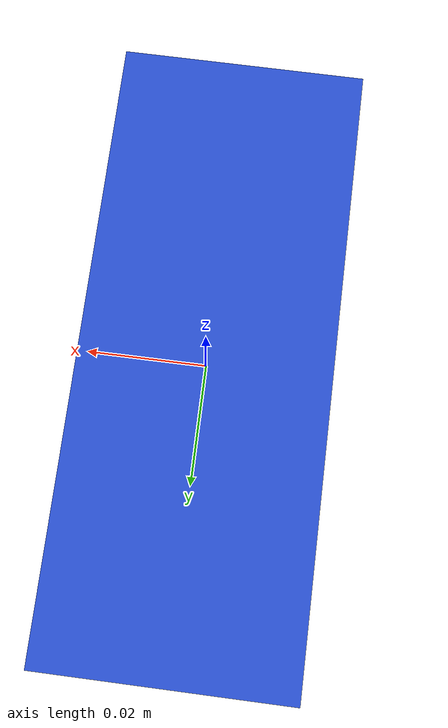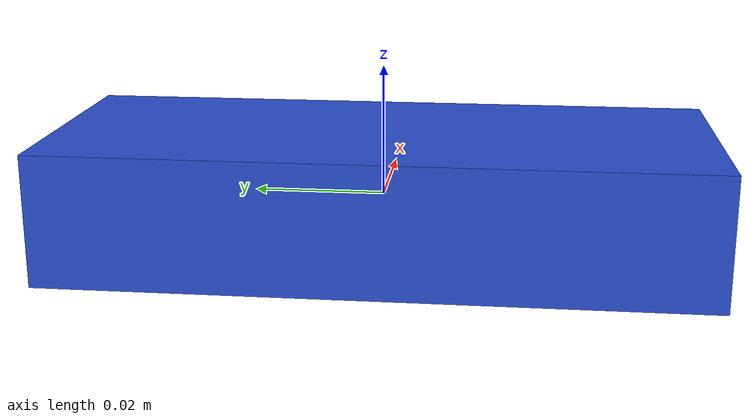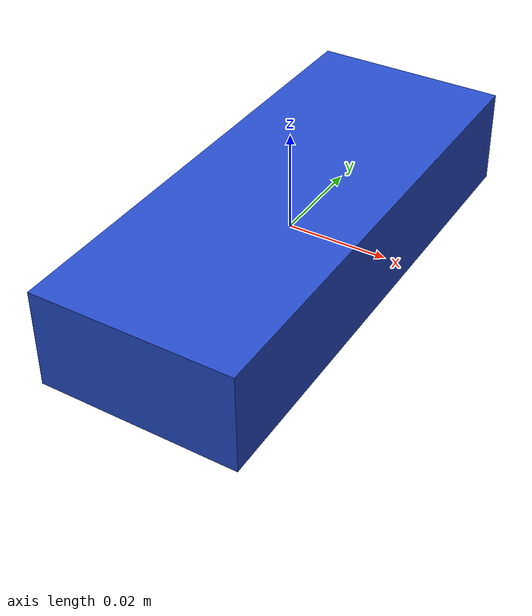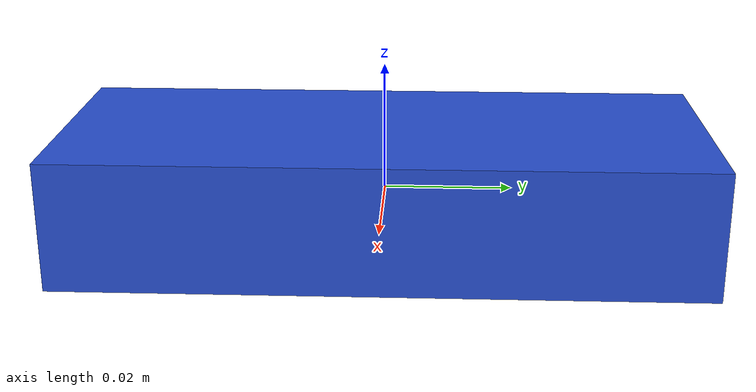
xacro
<?xml version="1.0"?>
<robot xmlns:xacro="http://www.ros.org/wiki/xacro">
  <xacro:include filename="inertials.xacro" />

  <!-- Shoulder measurements-->
  <xacro:property name="shoulder_box_x" value="0.155" />
  <xacro:property name="shoulder_box_y" value="0.080" />
  <xacro:property name="shoulder_box_z" value="0.055" />
  <xacro:property name="shoulder_box_weight" value="0.050" />

  <xacro:property name="shoulder_horizontal_x" value="0.040" />
  <xacro:property name="shoulder_horizontal_y" value="0.085" />
  <xacro:property name="shoulder_horizontal_z" value="0.020" />
  <xacro:property name="shoulder_horizontal_weight" value="0.07241" />

  <xacro:property name="shoulder_vertical_x" value="0.305" />
  <xacro:property name="shoulder_vertical_y" value="0.020" />
  <xacro:property name="shoulder_vertical_z" value="0.060" />
  <xacro:property name="shoulder_vertical_weight" value="0.23928" />

  <!-- Center of the robot -->
  <xacro:property name="main_link_x" value="0.040" />
  <xacro:property name="main_link_y" value="0.100" />
  <xacro:property name="main_link_z" value="0.020" />
  <xacro:property name="main_link_weight" value="0.08519" />

  <!-- Base link -->
  <link name="base_link">
    <visual>
      <origin xyz="0.0 0.0 0.0" />
      <geometry>
        <box
          size="
                    ${main_link_x}
                    ${main_link_y}
                    ${main_link_z}" />
      </geometry>
      <material name="blue" />
    </visual>
    <collision>
      <origin xyz="0.0 0.0 0.0" />
      <geometry>
        <box
          size="
                    ${main_link_x}
                    ${main_link_y}
                    ${main_link_z}" />
      </geometry>
    </collision>
  </link>

  <xacro:macro name="shoulder" params="prefix suffix reflect_y">
    <link name="${prefix}_shoulder_horizontal">
      <xacro:default_inertial mass="${shoulder_horizontal_weight}" />
      <visual>
        <origin xyz="0.0 0.0 0.0" />
        <geometry>
          <box
            size="${shoulder_horizontal_x}
                    ${shoulder_horizontal_y}
                    ${shoulder_horizontal_z}" />
        </geometry>
        <material name="red" />
      </visual>
      <collision>
        <origin xyz="0.0 0.0 0.0" />
        <geometry>
          <box
            size="${shoulder_horizontal_x}
                    ${shoulder_horizontal_y}
                    ${shoulder_horizontal_z}" />
        </geometry>
      </collision>
    </link>

    <joint name="${prefix}_shoulder_horizontal_base" type="fixed">
      <origin
        xyz="
            0.0
            ${reflect_y *((shoulder_horizontal_y / 2) + (main_link_y / 2))}
            0.0" />
      <parent link="base_link" />
      <child link="${prefix}_shoulder_horizontal" />
      <axis xyz="0 1 0" />
    </joint>

    <link name="${prefix}_shoulder_box">
      <xacro:default_inertial mass="${shoulder_box_weight}" />
      <visual>
        <origin xyz="0.0 0.0 0.0" />
        <geometry>
          <box
            size="
                        ${shoulder_box_x}
                        ${shoulder_box_y}
                        ${shoulder_box_z}"
          />
        </geometry>
        <material name="green" />
      </visual>
      <collision>
        <origin xyz="0.0 0.0 0.0" />
        <geometry>
          <box
            size="
                        ${shoulder_box_x}
                        ${shoulder_box_y}
                        ${shoulder_box_z}"
          />
        </geometry>
      </collision>
    </link>

    <joint name="${prefix}_shoulder_box_shoulder" type="fixed">
      <origin
        xyz="
            0
            ${reflect_y * (shoulder_horizontal_y / 4)}
            ${(shoulder_horizontal_z / 2) + (shoulder_box_z / 2)}" />
      <parent link="${prefix}_shoulder_horizontal" />
      <child link="${prefix}_shoulder_box" />
    </joint>

    <link name="${prefix}_shoulder_vertical">
      <xacro:default_inertial mass="${shoulder_vertical_weight}" />
      <visual>
        <origin xyz="0 0.0 0.0" />
        <geometry>
          <box
            size="
                    ${shoulder_vertical_x}
                    ${shoulder_vertical_y}
                    ${shoulder_vertical_z}" />
        </geometry>
        <material name="white" />
      </visual>
      <collision>
        <origin xyz="0 0.0 0.0" />
        <geometry>
          <box
            size="
                    ${shoulder_vertical_x}
                    ${shoulder_vertical_y}
                    ${shoulder_vertical_z}" />
        </geometry>
      </collision>
    </link>

    <joint name="${prefix}_shoulder_joint" type="fixed">
      <origin
        xyz="
            0
            ${reflect_y * ((shoulder_horizontal_y / 2) + (shoulder_vertical_y / 2))}
            ${-1 * (shoulder_vertical_z/2 - shoulder_horizontal_z/2)}" />
      <parent link="${prefix}_shoulder_horizontal" />
      <child link="${prefix}_shoulder_vertical" />
    </joint>
  </xacro:macro>
</robot>
